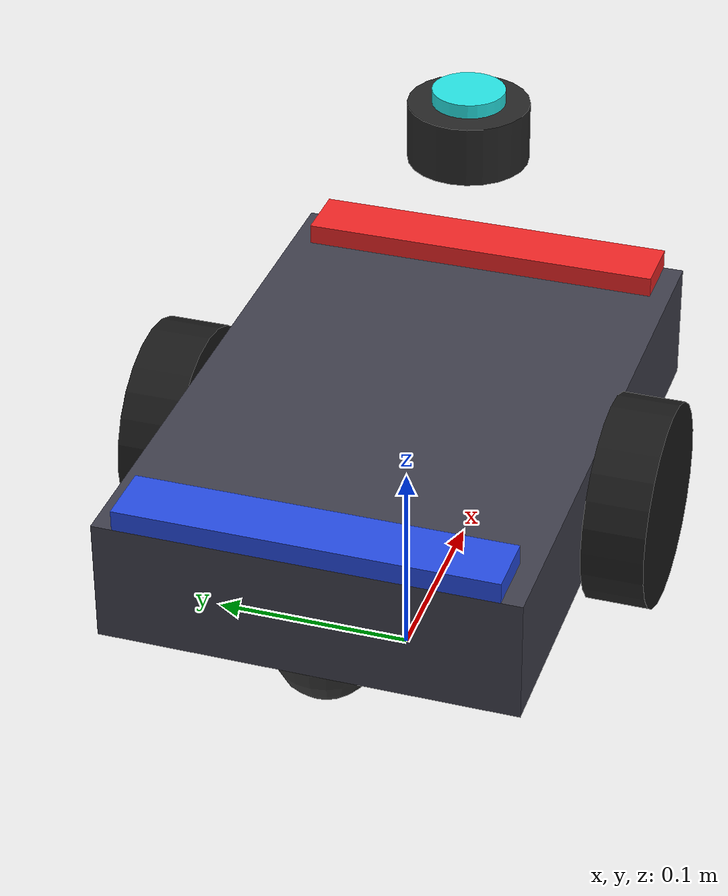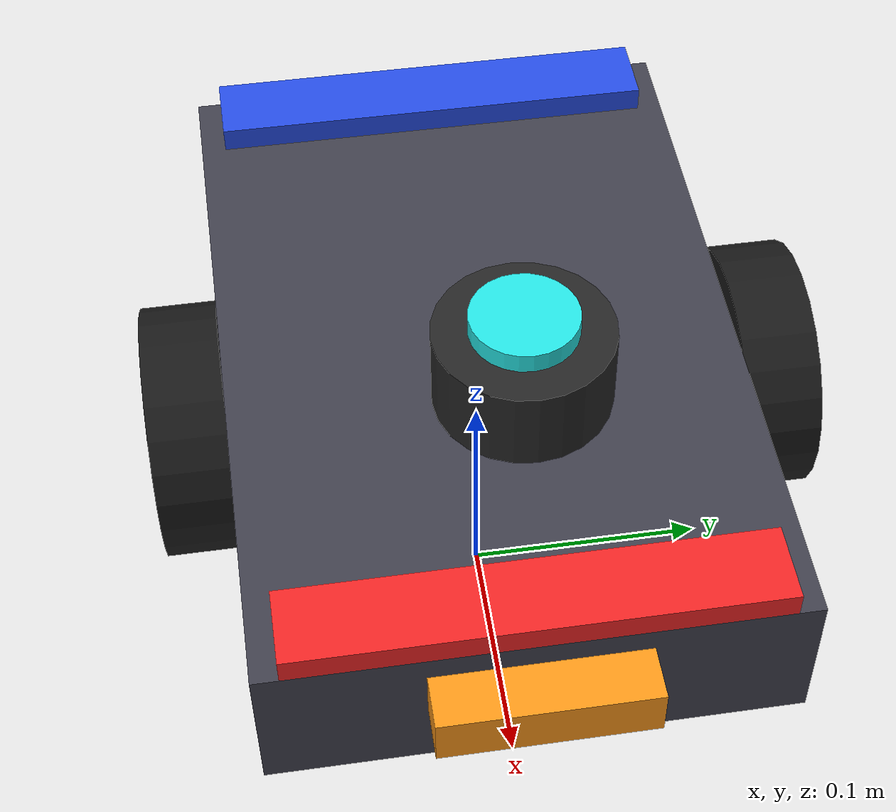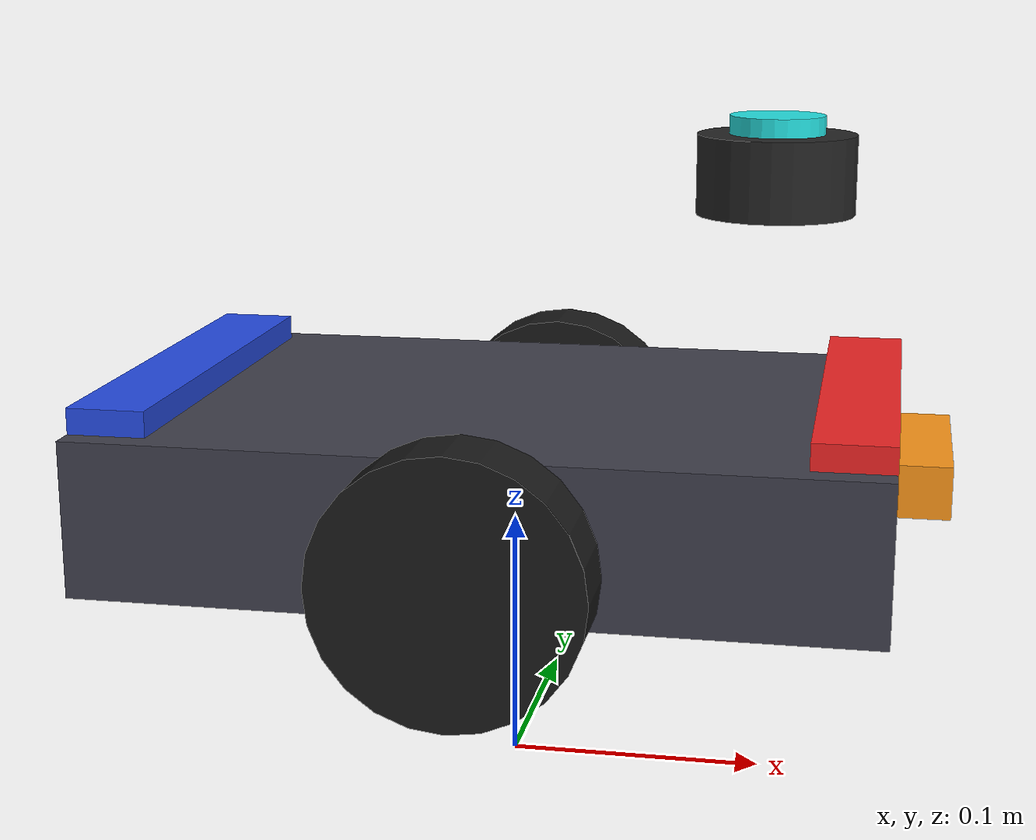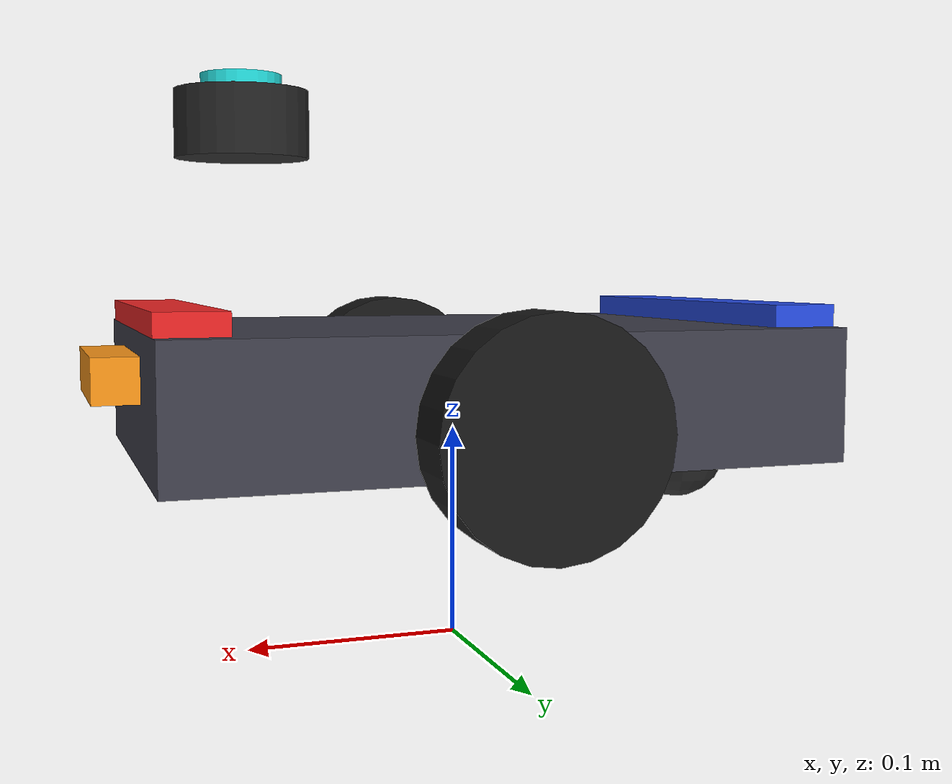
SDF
<?xml version="1.0"?>
<sdf version="1.8">
  <model name="swarm_bot">
    <pose>0 0 0.06 0 0 0</pose>

    <!-- Main body -->
    <link name="chassis">
      <pose>0 0 0.06 0 0 0</pose>

      <inertial>
        <mass>1.2</mass>
        <inertia>
          <ixx>0.01</ixx>
          <iyy>0.02</iyy>
          <izz>0.03</izz>
          <ixy>0.0</ixy>
          <ixz>0.0</ixz>
          <iyz>0.0</iyz>
        </inertia>
      </inertial>

      <collision name="collision">
        <geometry>
          <box>
            <size>0.30 0.20 0.06</size>
          </box>
        </geometry>
      </collision>

      <!-- Main chassis body -->
      <visual name="visual_body">
        <geometry>
          <box>
            <size>0.30 0.20 0.06</size>
          </box>
        </geometry>
        <material>
          <ambient>0.20 0.20 0.25 1</ambient>
          <diffuse>0.25 0.25 0.30 1</diffuse>
          <specular>0.10 0.10 0.10 1</specular>
        </material>
      </visual>

      <!-- FRONT marker: bright red strip -->
      <visual name="front_marker">
        <pose>0.135 0 0.035 0 0 0</pose>
        <geometry>
          <box>
            <size>0.03 0.18 0.01</size>
          </box>
        </geometry>
        <material>
          <ambient>0.80 0.10 0.10 1</ambient>
          <diffuse>0.95 0.15 0.15 1</diffuse>
          <specular>0.10 0.10 0.10 1</specular>
        </material>
      </visual>

      <!-- BACK marker: blue strip -->
      <visual name="rear_marker">
        <pose>-0.135 0 0.035 0 0 0</pose>
        <geometry>
          <box>
            <size>0.03 0.18 0.01</size>
          </box>
        </geometry>
        <material>
          <ambient>0.10 0.20 0.70 1</ambient>
          <diffuse>0.15 0.30 0.90 1</diffuse>
          <specular>0.10 0.10 0.10 1</specular>
        </material>
      </visual>

      <!-- Arrow-like front nose -->
      <visual name="front_nose">
        <pose>0.16 0 0.01 0 0 0</pose>
        <geometry>
          <box>
            <size>0.02 0.08 0.02</size>
          </box>
        </geometry>
        <material>
          <ambient>0.90 0.50 0.10 1</ambient>
          <diffuse>1.00 0.60 0.10 1</diffuse>
          <specular>0.10 0.10 0.10 1</specular>
        </material>
      </visual>

      <!-- Lidar housing -->
      <visual name="lidar_visual">
        <pose>0.10 0 0.12 0 0 0</pose>
        <geometry>
          <cylinder>
            <radius>0.03</radius>
            <length>0.03</length>
          </cylinder>
        </geometry>
        <material>
          <ambient>0.10 0.10 0.10 1</ambient>
          <diffuse>0.15 0.15 0.15 1</diffuse>
          <specular>0.20 0.20 0.20 1</specular>
        </material>
      </visual>

      <!-- Lidar top cap -->
      <visual name="lidar_cap">
        <pose>0.10 0 0.138 0 0 0</pose>
        <geometry>
          <cylinder>
            <radius>0.018</radius>
            <length>0.008</length>
          </cylinder>
        </geometry>
        <material>
          <ambient>0.10 0.70 0.70 1</ambient>
          <diffuse>0.15 0.90 0.90 1</diffuse>
          <specular>0.20 0.20 0.20 1</specular>
        </material>
      </visual>

      <sensor name="lidar" type="gpu_lidar">
        <pose>0.10 0 0.12 0 0 0</pose>
        <update_rate>20</update_rate>
        <ray>
          <scan>
            <horizontal>
              <samples>360</samples>
              <resolution>1</resolution>
              <min_angle>-3.14159</min_angle>
              <max_angle>3.14159</max_angle>
            </horizontal>
            <vertical>
              <samples>1</samples>
              <resolution>0.01</resolution>
              <min_angle>0</min_angle>
              <max_angle>0</max_angle>
            </vertical>
          </scan>
          <range>
            <min>0.10</min>
            <max>5.0</max>
            <resolution>0.01</resolution>
          </range>
        </ray>
        <always_on>1</always_on>
        <visualize>true</visualize>
      </sensor>
    </link>

    <!-- Left wheel -->
    <link name="left_wheel">
      <pose>0 0.115 0.05 1.5708 0 0</pose>
      <inertial>
        <mass>0.15</mass>
        <inertia>
          <ixx>0.0003</ixx>
          <iyy>0.0003</iyy>
          <izz>0.0003</izz>
          <ixy>0.0</ixy>
          <ixz>0.0</ixz>
          <iyz>0.0</iyz>
        </inertia>
      </inertial>
      <collision name="collision">
        <geometry>
          <cylinder>
            <radius>0.05</radius>
            <length>0.03</length>
          </cylinder>
        </geometry>
        <surface>
          <friction>
            <ode>
              <mu>5.0</mu>
              <mu2>5.0</mu2>
            </ode>
          </friction>
        </surface>
      </collision>
      <visual name="visual">
        <geometry>
          <cylinder>
            <radius>0.05</radius>
            <length>0.03</length>
          </cylinder>
        </geometry>
        <material>
          <ambient>0.05 0.05 0.05 1</ambient>
          <diffuse>0.10 0.10 0.10 1</diffuse>
          <specular>0.05 0.05 0.05 1</specular>
        </material>
      </visual>
    </link>

    <!-- Right wheel -->
    <link name="right_wheel">
      <pose>0 -0.115 0.05 1.5708 0 0</pose>
      <inertial>
        <mass>0.15</mass>
        <inertia>
          <ixx>0.0003</ixx>
          <iyy>0.0003</iyy>
          <izz>0.0003</izz>
          <ixy>0.0</ixy>
          <ixz>0.0</ixz>
          <iyz>0.0</iyz>
        </inertia>
      </inertial>
      <collision name="collision">
        <geometry>
          <cylinder>
            <radius>0.05</radius>
            <length>0.03</length>
          </cylinder>
        </geometry>
        <surface>
          <friction>
            <ode>
              <mu>5.0</mu>
              <mu2>5.0</mu2>
            </ode>
          </friction>
        </surface>
      </collision>
      <visual name="visual">
        <geometry>
          <cylinder>
            <radius>0.05</radius>
            <length>0.03</length>
          </cylinder>
        </geometry>
        <material>
          <ambient>0.05 0.05 0.05 1</ambient>
          <diffuse>0.10 0.10 0.10 1</diffuse>
          <specular>0.05 0.05 0.05 1</specular>
        </material>
      </visual>
    </link>

    <!-- Left wheel joint -->
    <joint name="left_wheel_joint" type="revolute">
      <parent>chassis</parent>
      <child>left_wheel</child>
      <axis>
        <xyz expressed_in="__model__">0 1 0</xyz>
        <limit>
          <lower>-1e16</lower>
          <upper>1e16</upper>
        </limit>
        <dynamics>
          <damping>0.1</damping>
        </dynamics>
      </axis>
    </joint>

    <!-- Right wheel joint -->
    <joint name="right_wheel_joint" type="revolute">
      <parent>chassis</parent>
      <child>right_wheel</child>
      <axis>
        <xyz expressed_in="__model__">0 1 0</xyz>
        <limit>
          <lower>-1e16</lower>
          <upper>1e16</upper>
        </limit>
        <dynamics>
          <damping>0.1</damping>
        </dynamics>
      </axis>
    </joint>

    <!-- Rear caster -->
    <link name="caster">
      <pose>-0.12 0 0.025 0 0 0</pose>
      <inertial>
        <mass>0.03</mass>
        <inertia>
          <ixx>0.00005</ixx>
          <iyy>0.00005</iyy>
          <izz>0.00005</izz>
          <ixy>0.0</ixy>
          <ixz>0.0</ixz>
          <iyz>0.0</iyz>
        </inertia>
      </inertial>
      <collision name="collision">
        <geometry>
          <sphere>
            <radius>0.025</radius>
          </sphere>
        </geometry>
      </collision>
      <visual name="visual">
        <geometry>
          <sphere>
            <radius>0.025</radius>
          </sphere>
        </geometry>
        <material>
          <ambient>0.15 0.15 0.15 1</ambient>
          <diffuse>0.20 0.20 0.20 1</diffuse>
          <specular>0.05 0.05 0.05 1</specular>
        </material>
      </visual>
    </link>

    <joint name="caster_joint" type="ball">
      <parent>chassis</parent>
      <child>caster</child>
    </joint>

    <plugin filename="gz-sim-diff-drive-system" name="gz::sim::systems::DiffDrive">
      <left_joint>left_wheel_joint</left_joint>
      <right_joint>right_wheel_joint</right_joint>
      <wheel_separation>0.23</wheel_separation>
      <wheel_radius>0.05</wheel_radius>
      <frame_id>robot3/odom</frame_id>
      <child_frame_id>robot3/chassis</child_frame_id>
      <odom_topic>/model/robot3/odometry</odom_topic>
      <odom_publish_frequency>50</odom_publish_frequency>
      <max_linear_acceleration>0.8</max_linear_acceleration>
      <max_angular_acceleration>1.5</max_angular_acceleration>
    </plugin>
  </model>
</sdf>
